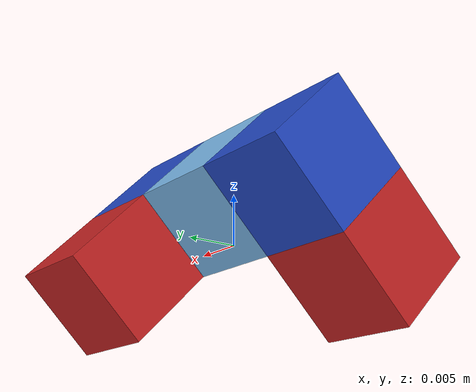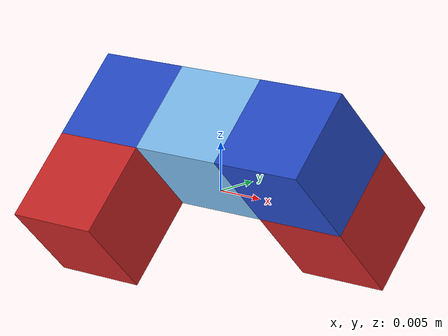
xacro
<?xml version='1.0'?>
<robot name ='l_shape' xmlns:xacro="http://www.ros.org/wiki/xacro">

<xacro:property name="side_len" value="0.01" />
<xacro:property name="tilt_angle" value="0.785"/>

<link name = "world"/>

<joint name = "joint_fix" type = "fixed">
<parent link = "world"/>
<child link = "center"/>
</joint>

<link name = "center">
<collision>
  <origin xyz = "0 0 ${side_len/2}" rpy="${tilt_angle} 0 0"/>
  <geometry>
    <box size="${side_len} ${side_len} ${side_len}"/>
  </geometry>
</collision>

<visual>
  <origin xyz="0 0 ${side_len/2}" rpy="${tilt_angle} 0 0"/>
  <geometry>
    <box size="${side_len} ${side_len} ${side_len}"/>
  </geometry>
</visual>

<inertial>
  <origin xyz="0 0 ${side_len/2}" rpy="${tilt_angle} 0 0" />
  <mass value="0.05" />
  <inertia
    ixx="0.001" ixy="0.0"  ixz="0.0"
    iyy="0.001" iyz="0.0"
    izz="0.001" />
</inertial>
</link>

<joint name = "upper_cube" type = "fixed">
  <parent link="center"/>
  <child link = "upper"/>
</joint>

<link name = "upper">
<collision>
  <origin xyz = "${side_len} 0 ${side_len/2}" rpy="${tilt_angle} 0 0"/>
  <geometry>
    <box size="${side_len} ${side_len} ${side_len}"/>
  </geometry>
</collision>

<visual>
  <origin xyz="${side_len} 0 ${side_len/2}" rpy="${tilt_angle} 0 0"/>
  <geometry>
    <box size="${side_len} ${side_len} ${side_len}"/>
  </geometry>
</visual>

<inertial>
  <origin xyz="${side_len} 0 ${side_len/2}" rpy="${tilt_angle} 0 0" />
  <mass value="0.05" />
  <inertia
    ixx="0.001" ixy="0.0"  ixz="0.0"
    iyy="0.001" iyz="0.0"
    izz="0.001" />
</inertial>
</link>

<joint name = "lower_cube" type = "fixed">
  <parent link="center"/>
  <child link = "lower"/>
</joint>

<link name = "lower">
  <collision>
    <origin xyz = "-${side_len} 0 ${side_len/2}" rpy="${tilt_angle} 0 0"/>
    <geometry>
      <box size="${side_len} ${side_len} ${side_len}"/>
    </geometry>
  </collision>

  <visual>
    <origin xyz="-${side_len} 0 ${side_len/2}" rpy="${tilt_angle} 0 0"/>
    <geometry>
      <box size="${side_len} ${side_len} ${side_len}"/>
    </geometry>
  </visual>

  <inertial>
    <origin xyz="-${side_len} 0 ${side_len/2}" rpy="${tilt_angle} 0 0" />
    <mass value="0.05" />
    <inertia
      ixx="0.001" ixy="0.0"  ixz="0.0"
      iyy="0.001" iyz="0.0"
      izz="0.001" />
  </inertial>
</link>

<joint name = "lower_right_cube" type = "fixed">
  <parent link="lower"/>
  <child link = "lower_right"/>
</joint>

<link name = "lower_right">
<collision>
<origin xyz = "${side_len} ${side_len*cos(tilt_angle)} ${side_len*(1/2-cos(tilt_angle))}" rpy="${tilt_angle} 0 0"/>
<geometry>
  <box size="${side_len} ${side_len} ${side_len}"/>
</geometry>
</collision>

<visual>
<origin xyz="${side_len} ${side_len*cos(tilt_angle)} ${side_len*(1/2-cos(tilt_angle))}" rpy="${tilt_angle} 0 0"/>
<geometry>
  <box size="${side_len} ${side_len} ${side_len}"/>
</geometry>
</visual>

<inertial>
<origin xyz="${side_len} ${side_len*cos(tilt_angle)} ${side_len*(1/2-cos(tilt_angle))}" rpy="${tilt_angle} 0 0" />
<mass value="0.05" />
<inertia
  ixx="0.001" ixy="0.0"  ixz="0.0"
  iyy="0.001" iyz="0.0"
  izz="0.001" />
</inertial>
</link>

<joint name = "upper_left_cube" type = "fixed">
  <parent link="upper"/>
  <child link = "upper_left"/>
</joint>

<link name = "upper_left">
<collision>
<origin xyz = "-${side_len} -${side_len*cos(tilt_angle)} ${side_len*(1/2-cos(tilt_angle))}" rpy="${tilt_angle} 0 0"/>
<geometry>
  <box size="${side_len} ${side_len} ${side_len}"/>
</geometry>
</collision>

<visual>
<origin xyz="-${side_len} -${side_len*cos(tilt_angle)} ${side_len*(1/2-cos(tilt_angle))}" rpy="${tilt_angle} 0 0"/>
<geometry>
  <box size="${side_len} ${side_len} ${side_len}"/>
</geometry>
</visual>

<inertial>
<origin xyz="-${side_len} -${side_len*cos(tilt_angle)} ${side_len*(1/2-cos(tilt_angle))}" rpy="${tilt_angle} 0 0" />
<mass value="0.05" />
<inertia
  ixx="0.001" ixy="0.0"  ixz="0.0"
  iyy="0.001" iyz="0.0"
  izz="0.001" />
</inertial>
</link>

<gazebo reference="center">
<mu1>10</mu1>
<mu2>10</mu2>
<material>Gazebo/SkyBlue</material>
<static>true</static>
<maxVel>0</maxVel>
<minDepth>0.001</minDepth>
</gazebo>

<gazebo reference="upper">
<mu1>10</mu1>
<mu2>10</mu2>
<material>Gazebo/Blue</material>
<static>true</static>
<maxVel>0</maxVel>
<minDepth>0.001</minDepth>
</gazebo>

<gazebo reference="lower">
<mu1>10</mu1>
<mu2>10</mu2>
<material>Gazebo/Blue</material>
<static>true</static>
<maxVel>0</maxVel>
<minDepth>0.001</minDepth>
</gazebo>

<gazebo reference="lower_right">
<mu1>10</mu1>
<mu2>10</mu2>
<material>Gazebo/Red</material>
<static>true</static>
<maxVel>0</maxVel>
<minDepth>0.001</minDepth>
</gazebo>

<gazebo reference="upper_left">
<mu1>10</mu1>
<mu2>10</mu2>
<material>Gazebo/Red</material>
<static>true</static>
<maxVel>0</maxVel>
<minDepth>0.001</minDepth>
</gazebo>

</robot>
